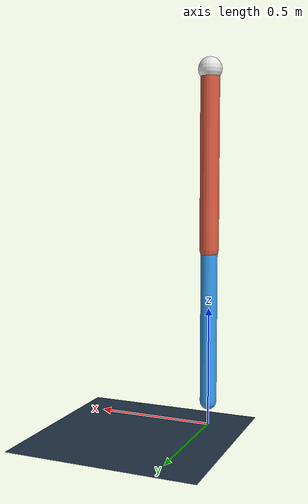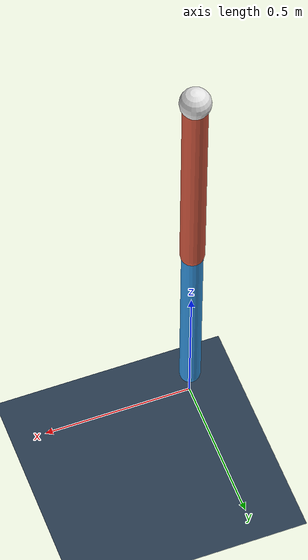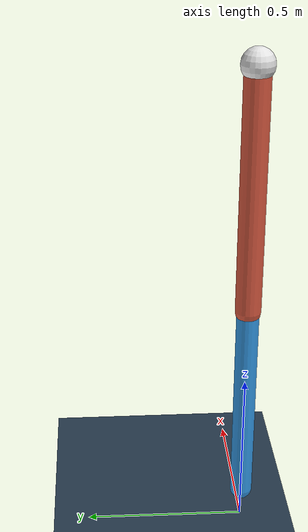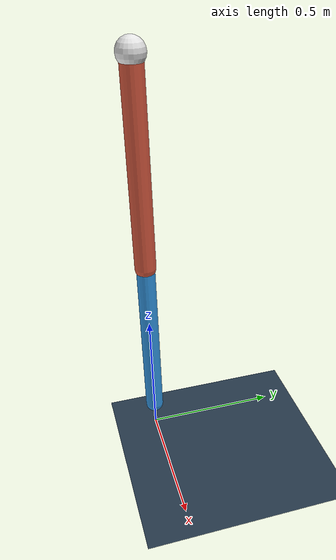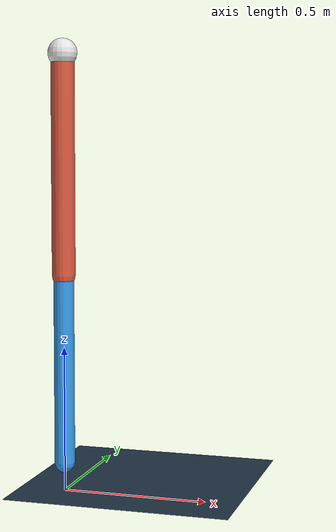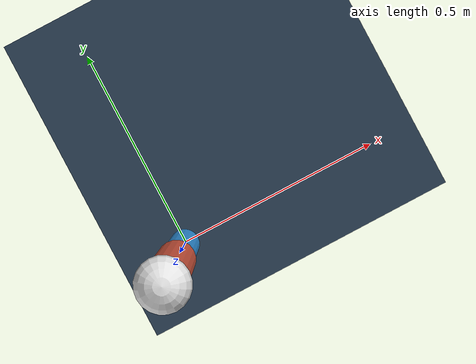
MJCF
<mujoco model="double_pendulum">
  <compiler angle="radian" autolimits="true"/>
  <option gravity="0 0 -9.81" integrator="RK4" timestep="0.002"/>

  <visual>
    <headlight ambient="0.45 0.45 0.45" diffuse="0.7 0.7 0.7"/>
    <rgba haze="0.15 0.25 0.35 1"/>
  </visual>

  <asset>
    <texture name="grid" type="2d" builtin="checker" width="512" height="512"
             rgb1="0.20 0.30 0.40" rgb2="0.10 0.15 0.20"/>
    <material name="grid" texture="grid" texrepeat="6 6" reflectance="0.1"/>
    <material name="link1" rgba="0.85 0.35 0.25 1"/>
    <material name="link2" rgba="0.20 0.60 0.90 1"/>
  </asset>

  <worldbody>
    <light pos="0 0 3" dir="0 0 -1" diffuse="1 1 1"/>
    <geom name="floor" type="plane" size="3 3 0.1" material="grid"/>

    <body name="base" pos="0 0 1.5">
      <geom name="base_geom" type="sphere" size="0.05" rgba="0.9 0.9 0.9 1"/>

      <body name="link1" pos="0 0 0">
        <joint name="hinge1" type="hinge" axis="0 1 0" limited="true" range="-3.14 3.14" damping="0.03"/>
        <geom name="rod1" type="capsule" fromto="0 0 0 0 0 -0.75" size="0.04" material="link1"/>
        <inertial pos="0 0 -0.375" mass="1.2" diaginertia="0.06 0.06 0.01"/>

        <body name="link2" pos="0 0 -0.75">
          <joint name="hinge2" type="hinge" axis="0 1 0" limited="true" range="-3.14 3.14" damping="0.02"/>
          <geom name="rod2" type="capsule" fromto="0 0 0 0 0 -0.65" size="0.035" material="link2"/>
          <inertial pos="0 0 -0.325" mass="0.8" diaginertia="0.035 0.035 0.008"/>
        </body>
      </body>
    </body>

    <camera name="main_cam" pos="2.5 -2.2 1.8" xyaxes="0.7 0.7 0 -0.3 0.3 0.9"/>
  </worldbody>

  <actuator>
    <motor name="m1" joint="hinge1" gear="1" ctrllimited="true" ctrlrange="-2 2"/>
    <motor name="m2" joint="hinge2" gear="1" ctrllimited="true" ctrlrange="-2 2"/>
  </actuator>
</mujoco>
